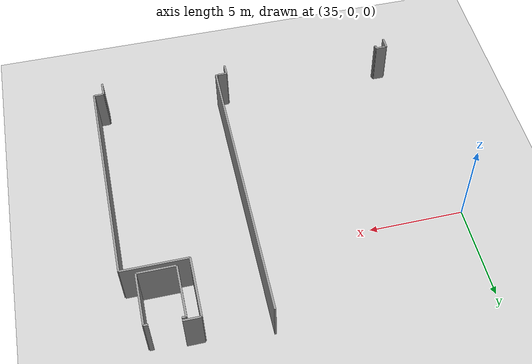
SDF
<sdf version="1.6">
 <world name="default">
  <model name="ground_plane">
   <static>1</static>
   <link name="link">
    <collision name="collision">
     <geometry><plane><normal>0 0 1</normal><size>100 100</size></plane></geometry>
     <surface><friction><ode><mu>100</mu><mu2>50</mu2></ode></friction></surface>
    </collision>
    <visual name="visual">
     <cast_shadows>0</cast_shadows>
     <geometry><plane><normal>0 0 1</normal><size>100 100</size></plane></geometry>
     <material>
      <script><uri>file://media/materials/scripts/gazebo.material</uri><name>Gazebo/Grey</name></script>
     </material>
    </visual>
   </link>
  </model>
  <model name="50045368">
   <static>1</static>
   <link name="Wall_310">
    <collision name="Wall_310_Collision">
     <geometry><box><size>2.78043202033 0.1 2.5</size></box></geometry>
     <pose>1.39021601017 0 1.25 0 0 0</pose>
    </collision>
    <visual name="Wall_310_Visual">
     <pose>1.39021601017 0 1.25 0 0 0</pose>
     <geometry><box><size>2.78043202033 0.1 2.5</size></box></geometry>
     <material>
      <script><uri>file://media/materials/scripts/gazebo.material</uri><name>Gazebo/Grey</name></script>
      <ambient>1 1 1 1</ambient>
     </material>
    </visual>
    <pose>102.880050826 -24.2628970775 0 0 0 1.57079632679</pose>
   </link>
   <link name="Wall_311">
    <collision name="Wall_311_Collision">
     <geometry><box><size>0.20584498094 0.1 2.5</size></box></geometry>
     <pose>0.10292249047 0 1.25 0 0 0</pose>
    </collision>
    <visual name="Wall_311_Visual">
     <pose>0.10292249047 0 1.25 0 0 0</pose>
     <geometry><box><size>0.20584498094 0.1 2.5</size></box></geometry>
     <material>
      <script><uri>file://media/materials/scripts/gazebo.material</uri><name>Gazebo/Grey</name></script>
      <ambient>1 1 1 1</ambient>
     </material>
    </visual>
    <pose>102.880050826 -21.4824650572 0 0 0 0.0</pose>
   </link>
   <link name="Wall_312">
    <collision name="Wall_312_Collision">
     <geometry><box><size>0.213468869123 0.1 2.5</size></box></geometry>
     <pose>0.106734434562 0 1.25 0 0 0</pose>
    </collision>
    <visual name="Wall_312_Visual">
     <pose>0.106734434562 0 1.25 0 0 0</pose>
     <geometry><box><size>0.213468869123 0.1 2.5</size></box></geometry>
     <material>
      <script><uri>file://media/materials/scripts/gazebo.material</uri><name>Gazebo/Grey</name></script>
      <ambient>1 1 1 1</ambient>
     </material>
    </visual>
    <pose>104.624650572 -21.4824650572 0 0 0 0.0</pose>
   </link>
   <link name="Wall_313">
    <collision name="Wall_313_Collision">
     <geometry><box><size>2.78055908513 0.1 2.5</size></box></geometry>
     <pose>1.39027954257 0 1.25 0 0 0</pose>
    </collision>
    <visual name="Wall_313_Visual">
     <pose>1.39027954257 0 1.25 0 0 0</pose>
     <geometry><box><size>2.78055908513 0.1 2.5</size></box></geometry>
     <material>
      <script><uri>file://media/materials/scripts/gazebo.material</uri><name>Gazebo/Grey</name></script>
      <ambient>1 1 1 1</ambient>
     </material>
    </visual>
    <pose>104.838119441 -21.4824650572 0 0 0 -1.57079632679</pose>
   </link>
   <link name="Wall_314">
    <collision name="Wall_314_Collision">
     <geometry><box><size>1.95806861912 0.1 2.5</size></box></geometry>
     <pose>0.979034309558 0 1.25 0 0 0</pose>
    </collision>
    <visual name="Wall_314_Visual">
     <pose>0.979034309558 0 1.25 0 0 0</pose>
     <geometry><box><size>1.95806861912 0.1 2.5</size></box></geometry>
     <material>
      <script><uri>file://media/materials/scripts/gazebo.material</uri><name>Gazebo/Grey</name></script>
      <ambient>1 1 1 1</ambient>
     </material>
    </visual>
    <pose>104.838119441 -24.2630241423 0 0 0 3.14152776066</pose>
   </link>
   <link name="Wall_327">
    <collision name="Wall_327_Collision">
     <geometry><box><size>0.894790343075 0.1 2.5</size></box></geometry>
     <pose>0.447395171537 0 1.25 0 0 0</pose>
    </collision>
    <visual name="Wall_327_Visual">
     <pose>0.447395171537 0 1.25 0 0 0</pose>
     <geometry><box><size>0.894790343075 0.1 2.5</size></box></geometry>
     <material>
      <script><uri>file://media/materials/scripts/gazebo.material</uri><name>Gazebo/Grey</name></script>
      <ambient>1 1 1 1</ambient>
     </material>
    </visual>
    <pose>103.087166455 -21.3263024142 0 0 0 3.14159265359</pose>
   </link>
   <link name="Wall_328">
    <collision name="Wall_328_Collision">
     <geometry><box><size>3.22452350699 0.1 2.5</size></box></geometry>
     <pose>1.61226175349 0 1.25 0 0 0</pose>
    </collision>
    <visual name="Wall_328_Visual">
     <pose>1.61226175349 0 1.25 0 0 0</pose>
     <geometry><box><size>3.22452350699 0.1 2.5</size></box></geometry>
     <material>
      <script><uri>file://media/materials/scripts/gazebo.material</uri><name>Gazebo/Grey</name></script>
      <ambient>1 1 1 1</ambient>
     </material>
    </visual>
    <pose>102.192376112 -21.3263024142 0 0 0 -1.57079632679</pose>
   </link>
   <link name="Wall_329">
    <collision name="Wall_329_Collision">
     <geometry><box><size>3.40686149936 0.1 2.5</size></box></geometry>
     <pose>1.70343074968 0 1.25 0 0 0</pose>
    </collision>
    <visual name="Wall_329_Visual">
     <pose>1.70343074968 0 1.25 0 0 0</pose>
     <geometry><box><size>3.40686149936 0.1 2.5</size></box></geometry>
     <material>
      <script><uri>file://media/materials/scripts/gazebo.material</uri><name>Gazebo/Grey</name></script>
      <ambient>1 1 1 1</ambient>
     </material>
    </visual>
    <pose>102.192376112 -24.5508259212 0 0 0 0.0</pose>
   </link>
   <link name="Wall_330">
    <collision name="Wall_330_Collision">
     <geometry><box><size>11.3603557814 0.1 2.5</size></box></geometry>
     <pose>5.68017789072 0 1.25 0 0 0</pose>
    </collision>
    <visual name="Wall_330_Visual">
     <pose>5.68017789072 0 1.25 0 0 0</pose>
     <geometry><box><size>11.3603557814 0.1 2.5</size></box></geometry>
     <material>
      <script><uri>file://media/materials/scripts/gazebo.material</uri><name>Gazebo/Grey</name></script>
      <ambient>1 1 1 1</ambient>
     </material>
    </visual>
    <pose>105.599237611 -24.5508259212 0 0 0 -1.57079632679</pose>
   </link>
   <link name="Wall_331">
    <collision name="Wall_331_Collision">
     <geometry><box><size>0.51207115629 0.1 2.5</size></box></geometry>
     <pose>0.256035578145 0 1.25 0 0 0</pose>
    </collision>
    <visual name="Wall_331_Visual">
     <pose>0.256035578145 0 1.25 0 0 0</pose>
     <geometry><box><size>0.51207115629 0.1 2.5</size></box></geometry>
     <material>
      <script><uri>file://media/materials/scripts/gazebo.material</uri><name>Gazebo/Grey</name></script>
      <ambient>1 1 1 1</ambient>
     </material>
    </visual>
    <pose>105.599237611 -35.9111817027 0 0 0 3.14159265359</pose>
   </link>
   <link name="Wall_332">
    <collision name="Wall_332_Collision">
     <geometry><box><size>0.776874205845 0.1 2.5</size></box></geometry>
     <pose>0.388437102922 0 1.25 0 0 0</pose>
    </collision>
    <visual name="Wall_332_Visual">
     <pose>0.388437102922 0 1.25 0 0 0</pose>
     <geometry><box><size>0.776874205845 0.1 2.5</size></box></geometry>
     <material>
      <script><uri>file://media/materials/scripts/gazebo.material</uri><name>Gazebo/Grey</name></script>
      <ambient>1 1 1 1</ambient>
     </material>
    </visual>
    <pose>105.087166455 -35.9111817027 0 0 0 -1.57079632679</pose>
   </link>
   <link name="Wall_335">
    <collision name="Wall_335_Collision">
     <geometry><box><size>0.0193138500635 0.1 2.5</size></box></geometry>
     <pose>0.00965692503177 0 1.25 0 0 0</pose>
    </collision>
    <visual name="Wall_335_Visual">
     <pose>0.00965692503177 0 1.25 0 0 0</pose>
     <geometry><box><size>0.0193138500635 0.1 2.5</size></box></geometry>
     <material>
      <script><uri>file://media/materials/scripts/gazebo.material</uri><name>Gazebo/Grey</name></script>
      <ambient>1 1 1 1</ambient>
     </material>
    </visual>
    <pose>98.8820838628 -35.9339263024 0 0 0 3.14159265359</pose>
   </link>
   <link name="Wall_336">
    <collision name="Wall_336_Collision">
     <geometry><box><size>14.9904701398 0.1 2.5</size></box></geometry>
     <pose>7.49523506989 0 1.25 0 0 0</pose>
    </collision>
    <visual name="Wall_336_Visual">
     <pose>7.49523506989 0 1.25 0 0 0</pose>
     <geometry><box><size>14.9904701398 0.1 2.5</size></box></geometry>
     <material>
      <script><uri>file://media/materials/scripts/gazebo.material</uri><name>Gazebo/Grey</name></script>
      <ambient>1 1 1 1</ambient>
     </material>
    </visual>
    <pose>98.8627700127 -35.9339263024 0 0 0 1.57079632679</pose>
   </link>
   <link name="Wall_607">
    <collision name="Wall_607_Collision">
     <geometry><box><size>0.49085133418 0.1 2.5</size></box></geometry>
     <pose>0.24542566709 0 1.25 0 0 0</pose>
    </collision>
    <visual name="Wall_607_Visual">
     <pose>0.24542566709 0 1.25 0 0 0</pose>
     <geometry><box><size>0.49085133418 0.1 2.5</size></box></geometry>
     <material>
      <script><uri>file://media/materials/scripts/gazebo.material</uri><name>Gazebo/Grey</name></script>
      <ambient>1 1 1 1</ambient>
     </material>
    </visual>
    <pose>98.7695044473 -35.9310038119 0 0 0 3.14159265359</pose>
   </link>
   <link name="Wall_608">
    <collision name="Wall_608_Collision">
     <geometry><box><size>0.610546378653 0.1 2.5</size></box></geometry>
     <pose>0.305273189327 0 1.25 0 0 0</pose>
    </collision>
    <visual name="Wall_608_Visual">
     <pose>0.305273189327 0 1.25 0 0 0</pose>
     <geometry><box><size>0.610546378653 0.1 2.5</size></box></geometry>
     <material>
      <script><uri>file://media/materials/scripts/gazebo.material</uri><name>Gazebo/Grey</name></script>
      <ambient>1 1 1 1</ambient>
     </material>
    </visual>
    <pose>98.2786531131 -35.9310038119 0 0 0 -1.57079632679</pose>
   </link>
   <link name="Wall_611">
    <collision name="Wall_611_Collision">
     <geometry><box><size>0.0793915084466 0.1 2.5</size></box></geometry>
     <pose>0.0396957542233 0 1.25 0 0 0</pose>
    </collision>
    <visual name="Wall_611_Visual">
     <pose>0.0396957542233 0 1.25 0 0 0</pose>
     <geometry><box><size>0.0793915084466 0.1 2.5</size></box></geometry>
     <material>
      <script><uri>file://media/materials/scripts/gazebo.material</uri><name>Gazebo/Grey</name></script>
      <ambient>1 1 1 1</ambient>
     </material>
    </visual>
    <pose>89.684498094 -36.1221092757 0 0 0 2.39354969862</pose>
   </link>
   <link name="Wall_612">
    <collision name="Wall_612_Collision">
     <geometry><box><size>0.141296060991 0.1 2.5</size></box></geometry>
     <pose>0.0706480304956 0 1.25 0 0 0</pose>
    </collision>
    <visual name="Wall_612_Visual">
     <pose>0.0706480304956 0 1.25 0 0 0</pose>
     <geometry><box><size>0.141296060991 0.1 2.5</size></box></geometry>
     <material>
      <script><uri>file://media/materials/scripts/gazebo.material</uri><name>Gazebo/Grey</name></script>
      <ambient>1 1 1 1</ambient>
     </material>
    </visual>
    <pose>89.6263024142 -36.0681067344 0 0 0 1.57079632679</pose>
   </link>
   <link name="Wall_613">
    <collision name="Wall_613_Collision">
     <geometry><box><size>0.589834815756 0.1 2.5</size></box></geometry>
     <pose>0.294917407878 0 1.25 0 0 0</pose>
    </collision>
    <visual name="Wall_613_Visual">
     <pose>0.294917407878 0 1.25 0 0 0</pose>
     <geometry><box><size>0.589834815756 0.1 2.5</size></box></geometry>
     <material>
      <script><uri>file://media/materials/scripts/gazebo.material</uri><name>Gazebo/Grey</name></script>
      <ambient>1 1 1 1</ambient>
     </material>
    </visual>
    <pose>89.6263024142 -35.9268106734 0 0 0 3.14159265359</pose>
   </link>
   <link name="Wall_614">
    <collision name="Wall_614_Collision">
     <geometry><box><size>0.61041931385 0.1 2.5</size></box></geometry>
     <pose>0.305209656925 0 1.25 0 0 0</pose>
    </collision>
    <visual name="Wall_614_Visual">
     <pose>0.305209656925 0 1.25 0 0 0</pose>
     <geometry><box><size>0.61041931385 0.1 2.5</size></box></geometry>
     <material>
      <script><uri>file://media/materials/scripts/gazebo.material</uri><name>Gazebo/Grey</name></script>
      <ambient>1 1 1 1</ambient>
     </material>
    </visual>
    <pose>89.0364675985 -35.9268106734 0 0 0 -1.57079632679</pose>
   </link>
   <pose>-52.8 25.6383100381 0 0 0 0</pose>
  </model>
 </world>
</sdf>
